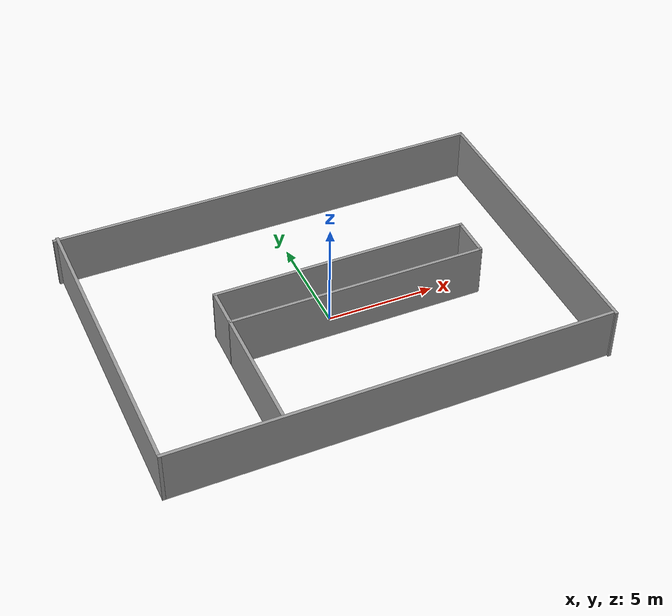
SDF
<?xml version='1.0'?>
<sdf version='1.7'>
  <model name='ICR2026_env2'>
    <pose>-0.083694 0.149184 0 0 -0 0</pose>
    <link name='Wall_0'>
      <collision name='Wall_0_Collision'>
        <geometry>
          <box>
            <size>11.9718 0.15 2.5</size>
          </box>
        </geometry>
        <pose>0 0 1.25 0 -0 0</pose>
      </collision>
      <visual name='Wall_0_Visual'>
        <pose>0 0 1.25 0 -0 0</pose>
        <geometry>
          <box>
            <size>11.9718 0.15 2.5</size>
          </box>
        </geometry>
        <material>
          <script>
            <uri>file://media/materials/scripts/gazebo.material</uri>
            <name>Gazebo/Grey</name>
          </script>
          <ambient>1 1 1 1</ambient>
        </material>
        <meta>
          <layer>0</layer>
        </meta>
      </visual>
      <pose>1.0046 -1.10005 0 0 -0 -0.001814</pose>
    </link>
    <link name='Wall_1'>
      <collision name='Wall_1_Collision'>
        <geometry>
          <box>
            <size>2.00021 0.15 2.5</size>
          </box>
        </geometry>
        <pose>0 0 1.25 0 -0 0</pose>
      </collision>
      <visual name='Wall_1_Visual'>
        <pose>0 0 1.25 0 -0 0</pose>
        <geometry>
          <box>
            <size>2.00021 0.15 2.5</size>
          </box>
        </geometry>
        <material>
          <script>
            <uri>file://media/materials/scripts/gazebo.material</uri>
            <name>Gazebo/Grey</name>
          </script>
          <ambient>1 1 1 1</ambient>
        </material>
        <meta>
          <layer>0</layer>
        </meta>
      </visual>
      <pose>6.94209 -0.159068 0 0 -0 1.5708</pose>
    </link>
    <link name='Wall_11'>
      <collision name='Wall_11_Collision'>
        <geometry>
          <box>
            <size>20.25 0.15 2.5</size>
          </box>
        </geometry>
        <pose>0 0 1.25 0 -0 0</pose>
      </collision>
      <visual name='Wall_11_Visual'>
        <pose>0 0 1.25 0 -0 0</pose>
        <geometry>
          <box>
            <size>20.25 0.15 2.5</size>
          </box>
        </geometry>
        <material>
          <script>
            <uri>file://media/materials/scripts/gazebo.material</uri>
            <name>Gazebo/Grey</name>
          </script>
          <ambient>1 1 1 1</ambient>
        </material>
        <meta>
          <layer>0</layer>
        </meta>
      </visual>
      <pose>0.022289 -7.00884 0 0 -0 0</pose>
    </link>
    <link name='Wall_13'>
      <collision name='Wall_13_Collision'>
        <geometry>
          <box>
            <size>14.25 0.15 2.5</size>
          </box>
        </geometry>
        <pose>0 0 1.25 0 -0 0</pose>
      </collision>
      <visual name='Wall_13_Visual'>
        <pose>0 0 1.25 0 -0 0</pose>
        <geometry>
          <box>
            <size>14.25 0.15 2.5</size>
          </box>
        </geometry>
        <material>
          <script>
            <uri>file://media/materials/scripts/gazebo.material</uri>
            <name>Gazebo/Grey</name>
          </script>
          <ambient>1 1 1 1</ambient>
        </material>
        <meta>
          <layer>0</layer>
        </meta>
      </visual>
      <pose>10.2067 -0.038579 0 0 -0 1.5708</pose>
    </link>
    <link name='Wall_17'>
      <collision name='Wall_17_Collision'>
        <geometry>
          <box>
            <size>20.5 0.15 2.5</size>
          </box>
        </geometry>
        <pose>0 0 1.25 0 -0 0</pose>
      </collision>
      <visual name='Wall_17_Visual'>
        <pose>0 0 1.25 0 -0 0</pose>
        <geometry>
          <box>
            <size>20.5 0.15 2.5</size>
          </box>
        </geometry>
        <material>
          <script>
            <uri>file://media/materials/scripts/gazebo.material</uri>
            <name>Gazebo/Grey</name>
          </script>
          <ambient>1 1 1 1</ambient>
        </material>
        <meta>
          <layer>0</layer>
        </meta>
      </visual>
      <pose>-0.031721 6.99404 0 0 -0 0</pose>
    </link>
    <link name='Wall_2'>
      <collision name='Wall_2_Collision'>
        <geometry>
          <box>
            <size>11.9984 0.15 2.5</size>
          </box>
        </geometry>
        <pose>0 0 1.25 0 -0 0</pose>
      </collision>
      <visual name='Wall_2_Visual'>
        <pose>0 0 1.25 0 -0 0</pose>
        <geometry>
          <box>
            <size>11.9984 0.15 2.5</size>
          </box>
        </geometry>
        <material>
          <script>
            <uri>file://media/materials/scripts/gazebo.material</uri>
            <name>Gazebo/Grey</name>
          </script>
          <ambient>1 1 1 1</ambient>
        </material>
        <meta>
          <layer>0</layer>
        </meta>
      </visual>
      <pose>1.0179 0.763353 0 0 -0 -3.14114</pose>
    </link>
    <link name='Wall_26'>
      <collision name='Wall_26_Collision'>
        <geometry>
          <box>
            <size>6 0.15 2.5</size>
          </box>
        </geometry>
        <pose>0 0 1.25 0 -0 0</pose>
      </collision>
      <visual name='Wall_26_Visual'>
        <pose>0 0 1.25 0 -0 0</pose>
        <geometry>
          <box>
            <size>6 0.15 2.5</size>
          </box>
        </geometry>
        <material>
          <script>
            <uri>file://media/materials/scripts/gazebo.material</uri>
            <name>Gazebo/Grey</name>
          </script>
          <ambient>1 1 1 1</ambient>
        </material>
        <meta>
          <layer>0</layer>
        </meta>
      </visual>
      <pose>-4.9063 -4.01433 0 0 -0 -1.5708</pose>
    </link>
    <link name='Wall_3'>
      <collision name='Wall_3_Collision'>
        <geometry>
          <box>
            <size>2 0.15 2.5</size>
          </box>
        </geometry>
        <pose>0 0 1.25 0 -0 0</pose>
      </collision>
      <visual name='Wall_3_Visual'>
        <pose>0 0 1.25 0 -0 0</pose>
        <geometry>
          <box>
            <size>2 0.15 2.5</size>
          </box>
        </geometry>
        <material>
          <script>
            <uri>file://media/materials/scripts/gazebo.material</uri>
            <name>Gazebo/Grey</name>
          </script>
          <ambient>1 1 1 1</ambient>
        </material>
        <meta>
          <layer>0</layer>
        </meta>
      </visual>
      <pose>-4.9063 -0.16433 0 0 -0 -1.5708</pose>
    </link>
    <link name='Wall_7'>
      <collision name='Wall_7_Collision'>
        <geometry>
          <box>
            <size>14.25 0.15 2.5</size>
          </box>
        </geometry>
        <pose>0 0 1.25 0 -0 0</pose>
      </collision>
      <visual name='Wall_7_Visual'>
        <pose>0 0 1.25 0 -0 0</pose>
        <geometry>
          <box>
            <size>14.25 0.15 2.5</size>
          </box>
        </geometry>
        <material>
          <script>
            <uri>file://media/materials/scripts/gazebo.material</uri>
            <name>Gazebo/Grey</name>
          </script>
          <ambient>1 1 1 1</ambient>
        </material>
        <meta>
          <layer>0</layer>
        </meta>
      </visual>
      <pose>-10.0461 0.03858 0 0 -0 1.5708</pose>
    </link>
    <static>1</static>
  </model>
</sdf>
